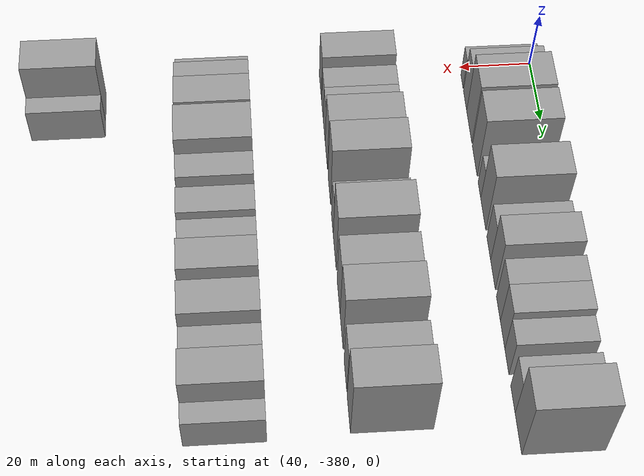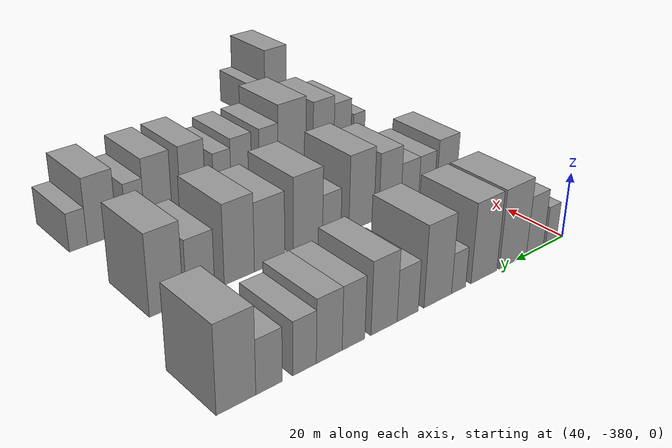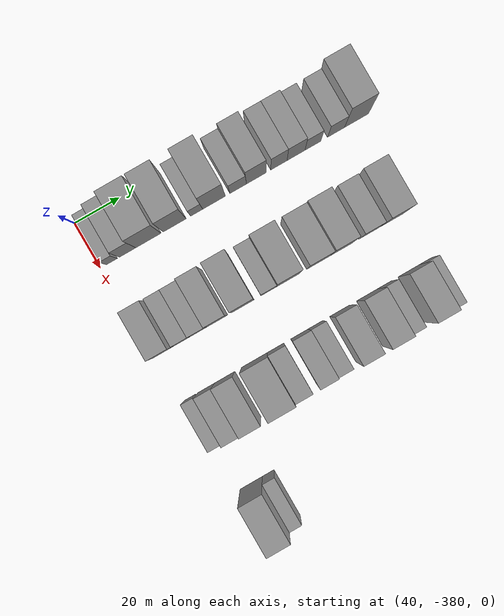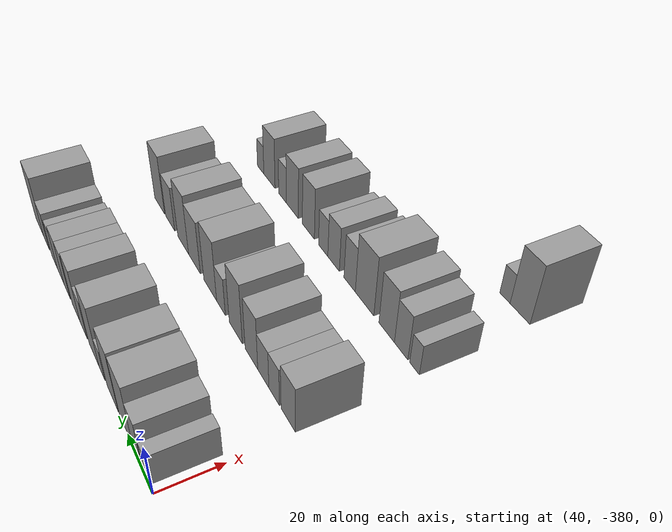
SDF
<sdf version="1.6">
 <world name="default">
  <model name="building_26">
   <static>1</static>
   <pose>50.0000 -374.8311 0 0.000000 0.000000 0.000000</pose>
   <link name="link">
    <pose>0 0 6.00 0 0 0</pose>
    <collision name="collision"><geometry><box><size>20.0000 4.8004 12.0000</size></box></geometry></collision>
    <visual name="visual">
     <cast_shadows>0</cast_shadows>
     <geometry><box><size>20.0000 4.8004 12.0000</size></box></geometry>
     <material>
      <script>
       <uri>model://grey_wall/materials/scripts</uri>
       <uri>model://grey_wall/materials/textures</uri>
       <name>vrc/grey_wall</name>
      </script>
     </material>
    </visual>
   </link>
  </model>
  <model name="building_27">
   <static>1</static>
   <pose>50.0000 -367.8223 0 0.000000 0.000000 0.000000</pose>
   <link name="link">
    <pose>0 0 9.00 0 0 0</pose>
    <collision name="collision"><geometry><box><size>20.0000 7.2173 18.0000</size></box></geometry></collision>
    <visual name="visual">
     <cast_shadows>0</cast_shadows>
     <geometry><box><size>20.0000 7.2173 18.0000</size></box></geometry>
     <material>
      <script>
       <uri>model://grey_wall/materials/scripts</uri>
       <uri>model://grey_wall/materials/textures</uri>
       <name>vrc/grey_wall</name>
      </script>
     </material>
    </visual>
   </link>
  </model>
  <model name="building_28">
   <static>1</static>
   <pose>50.0000 -358.6477 0 0.000000 0.000000 0.000000</pose>
   <link name="link">
    <pose>0 0 12.00 0 0 0</pose>
    <collision name="collision"><geometry><box><size>20.0000 11.1320 24.0000</size></box></geometry></collision>
    <visual name="visual">
     <cast_shadows>0</cast_shadows>
     <geometry><box><size>20.0000 11.1320 24.0000</size></box></geometry>
     <material>
      <script>
       <uri>model://grey_wall/materials/scripts</uri>
       <uri>model://grey_wall/materials/textures</uri>
       <name>vrc/grey_wall</name>
      </script>
     </material>
    </visual>
   </link>
  </model>
  <model name="building_29">
   <static>1</static>
   <pose>50.0000 -347.0237 0 0.000000 0.000000 0.000000</pose>
   <link name="link">
    <pose>0 0 12.00 0 0 0</pose>
    <collision name="collision"><geometry><box><size>20.0000 10.1159 24.0000</size></box></geometry></collision>
    <visual name="visual">
     <cast_shadows>0</cast_shadows>
     <geometry><box><size>20.0000 10.1159 24.0000</size></box></geometry>
     <material>
      <script>
       <uri>model://grey_wall/materials/scripts</uri>
       <uri>model://grey_wall/materials/textures</uri>
       <name>vrc/grey_wall</name>
      </script>
     </material>
    </visual>
   </link>
  </model>
  <model name="building_30">
   <static>1</static>
   <pose>50.0000 -337.2994 0 0.000000 0.000000 0.000000</pose>
   <link name="link">
    <pose>0 0 6.00 0 0 0</pose>
    <collision name="collision"><geometry><box><size>20.0000 5.3329 12.0000</size></box></geometry></collision>
    <visual name="visual">
     <cast_shadows>0</cast_shadows>
     <geometry><box><size>20.0000 5.3329 12.0000</size></box></geometry>
     <material>
      <script>
       <uri>model://grey_wall/materials/scripts</uri>
       <uri>model://grey_wall/materials/textures</uri>
       <name>vrc/grey_wall</name>
      </script>
     </material>
    </visual>
   </link>
  </model>
  <model name="building_31">
   <static>1</static>
   <pose>50.0000 -329.6168 0 0.000000 0.000000 0.000000</pose>
   <link name="link">
    <pose>0 0 12.00 0 0 0</pose>
    <collision name="collision"><geometry><box><size>20.0000 10.0321 24.0000</size></box></geometry></collision>
    <visual name="visual">
     <cast_shadows>0</cast_shadows>
     <geometry><box><size>20.0000 10.0321 24.0000</size></box></geometry>
     <material>
      <script>
       <uri>model://grey_wall/materials/scripts</uri>
       <uri>model://grey_wall/materials/textures</uri>
       <name>vrc/grey_wall</name>
      </script>
     </material>
    </visual>
   </link>
  </model>
  <model name="building_32">
   <static>1</static>
   <pose>50.0000 -318.9343 0 0.000000 0.000000 0.000000</pose>
   <link name="link">
    <pose>0 0 7.50 0 0 0</pose>
    <collision name="collision"><geometry><box><size>20.0000 7.3329 15.0000</size></box></geometry></collision>
    <visual name="visual">
     <cast_shadows>0</cast_shadows>
     <geometry><box><size>20.0000 7.3329 15.0000</size></box></geometry>
     <material>
      <script>
       <uri>model://grey_wall/materials/scripts</uri>
       <uri>model://grey_wall/materials/textures</uri>
       <name>vrc/grey_wall</name>
      </script>
     </material>
    </visual>
   </link>
  </model>
  <model name="building_33">
   <static>1</static>
   <pose>50.0000 -310.8922 0 0.000000 0.000000 0.000000</pose>
   <link name="link">
    <pose>0 0 10.50 0 0 0</pose>
    <collision name="collision"><geometry><box><size>20.0000 8.7513 21.0000</size></box></geometry></collision>
    <visual name="visual">
     <cast_shadows>0</cast_shadows>
     <geometry><box><size>20.0000 8.7513 21.0000</size></box></geometry>
     <material>
      <script>
       <uri>model://grey_wall/materials/scripts</uri>
       <uri>model://grey_wall/materials/textures</uri>
       <name>vrc/grey_wall</name>
      </script>
     </material>
    </visual>
   </link>
  </model>
  <model name="building_34">
   <static>1</static>
   <pose>50.0000 -300.9000 0 0.000000 0.000000 0.000000</pose>
   <link name="link">
    <pose>0 0 9.00 0 0 0</pose>
    <collision name="collision"><geometry><box><size>20.0000 7.2331 18.0000</size></box></geometry></collision>
    <visual name="visual">
     <cast_shadows>0</cast_shadows>
     <geometry><box><size>20.0000 7.2331 18.0000</size></box></geometry>
     <material>
      <script>
       <uri>model://grey_wall/materials/scripts</uri>
       <uri>model://grey_wall/materials/textures</uri>
       <name>vrc/grey_wall</name>
      </script>
     </material>
    </visual>
   </link>
  </model>
  <model name="building_35">
   <static>1</static>
   <pose>50.0000 -293.3137 0 0.000000 0.000000 0.000000</pose>
   <link name="link">
    <pose>0 0 9.00 0 0 0</pose>
    <collision name="collision"><geometry><box><size>20.0000 7.9395 18.0000</size></box></geometry></collision>
    <visual name="visual">
     <cast_shadows>0</cast_shadows>
     <geometry><box><size>20.0000 7.9395 18.0000</size></box></geometry>
     <material>
      <script>
       <uri>model://grey_wall/materials/scripts</uri>
       <uri>model://grey_wall/materials/textures</uri>
       <name>vrc/grey_wall</name>
      </script>
     </material>
    </visual>
   </link>
  </model>
  <model name="building_36">
   <static>1</static>
   <pose>50.0000 -285.8344 0 0.000000 0.000000 0.000000</pose>
   <link name="link">
    <pose>0 0 7.50 0 0 0</pose>
    <collision name="collision"><geometry><box><size>20.0000 7.0191 15.0000</size></box></geometry></collision>
    <visual name="visual">
     <cast_shadows>0</cast_shadows>
     <geometry><box><size>20.0000 7.0191 15.0000</size></box></geometry>
     <material>
      <script>
       <uri>model://grey_wall/materials/scripts</uri>
       <uri>model://grey_wall/materials/textures</uri>
       <name>vrc/grey_wall</name>
      </script>
     </material>
    </visual>
   </link>
  </model>
  <model name="building_37">
   <static>1</static>
   <pose>50.0000 -275.5826 0 0.000000 0.000000 0.000000</pose>
   <link name="link">
    <pose>0 0 7.50 0 0 0</pose>
    <collision name="collision"><geometry><box><size>20.0000 7.4845 15.0000</size></box></geometry></collision>
    <visual name="visual">
     <cast_shadows>0</cast_shadows>
     <geometry><box><size>20.0000 7.4845 15.0000</size></box></geometry>
     <material>
      <script>
       <uri>model://grey_wall/materials/scripts</uri>
       <uri>model://grey_wall/materials/textures</uri>
       <name>vrc/grey_wall</name>
      </script>
     </material>
    </visual>
   </link>
  </model>
  <model name="building_38">
   <static>1</static>
   <pose>50.0000 -266.4854 0 0.000000 0.000000 0.000000</pose>
   <link name="link">
    <pose>0 0 12.00 0 0 0</pose>
    <collision name="collision"><geometry><box><size>20.0000 10.7098 24.0000</size></box></geometry></collision>
    <visual name="visual">
     <cast_shadows>0</cast_shadows>
     <geometry><box><size>20.0000 10.7098 24.0000</size></box></geometry>
     <material>
      <script>
       <uri>model://grey_wall/materials/scripts</uri>
       <uri>model://grey_wall/materials/textures</uri>
       <name>vrc/grey_wall</name>
      </script>
     </material>
    </visual>
   </link>
  </model>
  <model name="building_156">
   <static>1</static>
   <pose>90.0000 -374.9344 0 0.000000 0.000000 0.000000</pose>
   <link name="link">
    <pose>0 0 9.00 0 0 0</pose>
    <collision name="collision"><geometry><box><size>20.0000 8.7517 18.0000</size></box></geometry></collision>
    <visual name="visual">
     <cast_shadows>0</cast_shadows>
     <geometry><box><size>20.0000 8.7517 18.0000</size></box></geometry>
     <material>
      <script>
       <uri>model://grey_wall/materials/scripts</uri>
       <uri>model://grey_wall/materials/textures</uri>
       <name>vrc/grey_wall</name>
      </script>
     </material>
    </visual>
   </link>
  </model>
  <model name="building_157">
   <static>1</static>
   <pose>90.0000 -366.1807 0 0.000000 0.000000 0.000000</pose>
   <link name="link">
    <pose>0 0 7.50 0 0 0</pose>
    <collision name="collision"><geometry><box><size>20.0000 6.7557 15.0000</size></box></geometry></collision>
    <visual name="visual">
     <cast_shadows>0</cast_shadows>
     <geometry><box><size>20.0000 6.7557 15.0000</size></box></geometry>
     <material>
      <script>
       <uri>model://grey_wall/materials/scripts</uri>
       <uri>model://grey_wall/materials/textures</uri>
       <name>vrc/grey_wall</name>
      </script>
     </material>
    </visual>
   </link>
  </model>
  <model name="building_158">
   <static>1</static>
   <pose>90.0000 -359.0996 0 0.000000 0.000000 0.000000</pose>
   <link name="link">
    <pose>0 0 7.50 0 0 0</pose>
    <collision name="collision"><geometry><box><size>20.0000 7.4064 15.0000</size></box></geometry></collision>
    <visual name="visual">
     <cast_shadows>0</cast_shadows>
     <geometry><box><size>20.0000 7.4064 15.0000</size></box></geometry>
     <material>
      <script>
       <uri>model://grey_wall/materials/scripts</uri>
       <uri>model://grey_wall/materials/textures</uri>
       <name>vrc/grey_wall</name>
      </script>
     </material>
    </visual>
   </link>
  </model>
  <model name="building_159">
   <static>1</static>
   <pose>90.0000 -350.9977 0 0.000000 0.000000 0.000000</pose>
   <link name="link">
    <pose>0 0 10.50 0 0 0</pose>
    <collision name="collision"><geometry><box><size>20.0000 8.7975 21.0000</size></box></geometry></collision>
    <visual name="visual">
     <cast_shadows>0</cast_shadows>
     <geometry><box><size>20.0000 8.7975 21.0000</size></box></geometry>
     <material>
      <script>
       <uri>model://grey_wall/materials/scripts</uri>
       <uri>model://grey_wall/materials/textures</uri>
       <name>vrc/grey_wall</name>
      </script>
     </material>
    </visual>
   </link>
  </model>
  <model name="building_160">
   <static>1</static>
   <pose>90.0000 -339.7776 0 0.000000 0.000000 0.000000</pose>
   <link name="link">
    <pose>0 0 12.00 0 0 0</pose>
    <collision name="collision"><geometry><box><size>20.0000 9.6427 24.0000</size></box></geometry></collision>
    <visual name="visual">
     <cast_shadows>0</cast_shadows>
     <geometry><box><size>20.0000 9.6427 24.0000</size></box></geometry>
     <material>
      <script>
       <uri>model://grey_wall/materials/scripts</uri>
       <uri>model://grey_wall/materials/textures</uri>
       <name>vrc/grey_wall</name>
      </script>
     </material>
    </visual>
   </link>
  </model>
  <model name="building_161">
   <static>1</static>
   <pose>90.0000 -328.5496 0 0.000000 0.000000 0.000000</pose>
   <link name="link">
    <pose>0 0 7.50 0 0 0</pose>
    <collision name="collision"><geometry><box><size>20.0000 6.8134 15.0000</size></box></geometry></collision>
    <visual name="visual">
     <cast_shadows>0</cast_shadows>
     <geometry><box><size>20.0000 6.8134 15.0000</size></box></geometry>
     <material>
      <script>
       <uri>model://grey_wall/materials/scripts</uri>
       <uri>model://grey_wall/materials/textures</uri>
       <name>vrc/grey_wall</name>
      </script>
     </material>
    </visual>
   </link>
  </model>
  <model name="building_162">
   <static>1</static>
   <pose>90.0000 -319.9287 0 0.000000 0.000000 0.000000</pose>
   <link name="link">
    <pose>0 0 12.00 0 0 0</pose>
    <collision name="collision"><geometry><box><size>20.0000 10.4284 24.0000</size></box></geometry></collision>
    <visual name="visual">
     <cast_shadows>0</cast_shadows>
     <geometry><box><size>20.0000 10.4284 24.0000</size></box></geometry>
     <material>
      <script>
       <uri>model://grey_wall/materials/scripts</uri>
       <uri>model://grey_wall/materials/textures</uri>
       <name>vrc/grey_wall</name>
      </script>
     </material>
    </visual>
   </link>
  </model>
  <model name="building_163">
   <static>1</static>
   <pose>90.0000 -306.5840 0 0.000000 0.000000 0.000000</pose>
   <link name="link">
    <pose>0 0 10.50 0 0 0</pose>
    <collision name="collision"><geometry><box><size>20.0000 10.2610 21.0000</size></box></geometry></collision>
    <visual name="visual">
     <cast_shadows>0</cast_shadows>
     <geometry><box><size>20.0000 10.2610 21.0000</size></box></geometry>
     <material>
      <script>
       <uri>model://grey_wall/materials/scripts</uri>
       <uri>model://grey_wall/materials/textures</uri>
       <name>vrc/grey_wall</name>
      </script>
     </material>
    </visual>
   </link>
  </model>
  <model name="building_164">
   <static>1</static>
   <pose>90.0000 -296.5458 0 0.000000 0.000000 0.000000</pose>
   <link name="link">
    <pose>0 0 12.00 0 0 0</pose>
    <collision name="collision"><geometry><box><size>20.0000 9.8153 24.0000</size></box></geometry></collision>
    <visual name="visual">
     <cast_shadows>0</cast_shadows>
     <geometry><box><size>20.0000 9.8153 24.0000</size></box></geometry>
     <material>
      <script>
       <uri>model://grey_wall/materials/scripts</uri>
       <uri>model://grey_wall/materials/textures</uri>
       <name>vrc/grey_wall</name>
      </script>
     </material>
    </visual>
   </link>
  </model>
  <model name="building_165">
   <static>1</static>
   <pose>90.0000 -284.2924 0 0.000000 0.000000 0.000000</pose>
   <link name="link">
    <pose>0 0 9.00 0 0 0</pose>
    <collision name="collision"><geometry><box><size>20.0000 8.6915 18.0000</size></box></geometry></collision>
    <visual name="visual">
     <cast_shadows>0</cast_shadows>
     <geometry><box><size>20.0000 8.6915 18.0000</size></box></geometry>
     <material>
      <script>
       <uri>model://grey_wall/materials/scripts</uri>
       <uri>model://grey_wall/materials/textures</uri>
       <name>vrc/grey_wall</name>
      </script>
     </material>
    </visual>
   </link>
  </model>
  <model name="building_166">
   <static>1</static>
   <pose>90.0000 -273.9540 0 0.000000 0.000000 0.000000</pose>
   <link name="link">
    <pose>0 0 12.00 0 0 0</pose>
    <collision name="collision"><geometry><box><size>20.0000 9.9853 24.0000</size></box></geometry></collision>
    <visual name="visual">
     <cast_shadows>0</cast_shadows>
     <geometry><box><size>20.0000 9.9853 24.0000</size></box></geometry>
     <material>
      <script>
       <uri>model://grey_wall/materials/scripts</uri>
       <uri>model://grey_wall/materials/textures</uri>
       <name>vrc/grey_wall</name>
      </script>
     </material>
    </visual>
   </link>
  </model>
  <model name="building_297">
   <static>1</static>
   <pose>130.0000 -374.8850 0 0.000000 0.000000 0.000000</pose>
   <link name="link">
    <pose>0 0 6.00 0 0 0</pose>
    <collision name="collision"><geometry><box><size>20.0000 5.1148 12.0000</size></box></geometry></collision>
    <visual name="visual">
     <cast_shadows>0</cast_shadows>
     <geometry><box><size>20.0000 5.1148 12.0000</size></box></geometry>
     <material>
      <script>
       <uri>model://grey_wall/materials/scripts</uri>
       <uri>model://grey_wall/materials/textures</uri>
       <name>vrc/grey_wall</name>
      </script>
     </material>
    </visual>
   </link>
  </model>
  <model name="building_298">
   <static>1</static>
   <pose>130.0000 -367.6358 0 0.000000 0.000000 0.000000</pose>
   <link name="link">
    <pose>0 0 9.00 0 0 0</pose>
    <collision name="collision"><geometry><box><size>20.0000 7.3835 18.0000</size></box></geometry></collision>
    <visual name="visual">
     <cast_shadows>0</cast_shadows>
     <geometry><box><size>20.0000 7.3835 18.0000</size></box></geometry>
     <material>
      <script>
       <uri>model://grey_wall/materials/scripts</uri>
       <uri>model://grey_wall/materials/textures</uri>
       <name>vrc/grey_wall</name>
      </script>
     </material>
    </visual>
   </link>
  </model>
  <model name="building_299">
   <static>1</static>
   <pose>130.0000 -359.5038 0 0.000000 0.000000 0.000000</pose>
   <link name="link">
    <pose>0 0 10.50 0 0 0</pose>
    <collision name="collision"><geometry><box><size>20.0000 8.8806 21.0000</size></box></geometry></collision>
    <visual name="visual">
     <cast_shadows>0</cast_shadows>
     <geometry><box><size>20.0000 8.8806 21.0000</size></box></geometry>
     <material>
      <script>
       <uri>model://grey_wall/materials/scripts</uri>
       <uri>model://grey_wall/materials/textures</uri>
       <name>vrc/grey_wall</name>
      </script>
     </material>
    </visual>
   </link>
  </model>
  <model name="building_300">
   <static>1</static>
   <pose>130.0000 -346.3968 0 0.000000 0.000000 0.000000</pose>
   <link name="link">
    <pose>0 0 12.00 0 0 0</pose>
    <collision name="collision"><geometry><box><size>20.0000 11.3335 24.0000</size></box></geometry></collision>
    <visual name="visual">
     <cast_shadows>0</cast_shadows>
     <geometry><box><size>20.0000 11.3335 24.0000</size></box></geometry>
     <material>
      <script>
       <uri>model://grey_wall/materials/scripts</uri>
       <uri>model://grey_wall/materials/textures</uri>
       <name>vrc/grey_wall</name>
      </script>
     </material>
    </visual>
   </link>
  </model>
  <model name="building_301">
   <static>1</static>
   <pose>130.0000 -337.0668 0 0.000000 0.000000 0.000000</pose>
   <link name="link">
    <pose>0 0 9.00 0 0 0</pose>
    <collision name="collision"><geometry><box><size>20.0000 7.3266 18.0000</size></box></geometry></collision>
    <visual name="visual">
     <cast_shadows>0</cast_shadows>
     <geometry><box><size>20.0000 7.3266 18.0000</size></box></geometry>
     <material>
      <script>
       <uri>model://grey_wall/materials/scripts</uri>
       <uri>model://grey_wall/materials/textures</uri>
       <name>vrc/grey_wall</name>
      </script>
     </material>
    </visual>
   </link>
  </model>
  <model name="building_302">
   <static>1</static>
   <pose>130.0000 -326.5060 0 0.000000 0.000000 0.000000</pose>
   <link name="link">
    <pose>0 0 9.00 0 0 0</pose>
    <collision name="collision"><geometry><box><size>20.0000 7.7950 18.0000</size></box></geometry></collision>
    <visual name="visual">
     <cast_shadows>0</cast_shadows>
     <geometry><box><size>20.0000 7.7950 18.0000</size></box></geometry>
     <material>
      <script>
       <uri>model://grey_wall/materials/scripts</uri>
       <uri>model://grey_wall/materials/textures</uri>
       <name>vrc/grey_wall</name>
      </script>
     </material>
    </visual>
   </link>
  </model>
  <model name="building_303">
   <static>1</static>
   <pose>130.0000 -319.3804 0 0.000000 0.000000 0.000000</pose>
   <link name="link">
    <pose>0 0 7.50 0 0 0</pose>
    <collision name="collision"><geometry><box><size>20.0000 6.4562 15.0000</size></box></geometry></collision>
    <visual name="visual">
     <cast_shadows>0</cast_shadows>
     <geometry><box><size>20.0000 6.4562 15.0000</size></box></geometry>
     <material>
      <script>
       <uri>model://grey_wall/materials/scripts</uri>
       <uri>model://grey_wall/materials/textures</uri>
       <name>vrc/grey_wall</name>
      </script>
     </material>
    </visual>
   </link>
  </model>
  <model name="building_304">
   <static>1</static>
   <pose>130.0000 -308.7238 0 0.000000 0.000000 0.000000</pose>
   <link name="link">
    <pose>0 0 10.50 0 0 0</pose>
    <collision name="collision"><geometry><box><size>20.0000 8.8570 21.0000</size></box></geometry></collision>
    <visual name="visual">
     <cast_shadows>0</cast_shadows>
     <geometry><box><size>20.0000 8.8570 21.0000</size></box></geometry>
     <material>
      <script>
       <uri>model://grey_wall/materials/scripts</uri>
       <uri>model://grey_wall/materials/textures</uri>
       <name>vrc/grey_wall</name>
      </script>
     </material>
    </visual>
   </link>
  </model>
  <model name="building_305">
   <static>1</static>
   <pose>130.0000 -296.6509 0 0.000000 0.000000 0.000000</pose>
   <link name="link">
    <pose>0 0 10.50 0 0 0</pose>
    <collision name="collision"><geometry><box><size>20.0000 9.2887 21.0000</size></box></geometry></collision>
    <visual name="visual">
     <cast_shadows>0</cast_shadows>
     <geometry><box><size>20.0000 9.2887 21.0000</size></box></geometry>
     <material>
      <script>
       <uri>model://grey_wall/materials/scripts</uri>
       <uri>model://grey_wall/materials/textures</uri>
       <name>vrc/grey_wall</name>
      </script>
     </material>
    </visual>
   </link>
  </model>
  <model name="building_306">
   <static>1</static>
   <pose>130.0000 -288.9346 0 0.000000 0.000000 0.000000</pose>
   <link name="link">
    <pose>0 0 7.50 0 0 0</pose>
    <collision name="collision"><geometry><box><size>20.0000 6.1439 15.0000</size></box></geometry></collision>
    <visual name="visual">
     <cast_shadows>0</cast_shadows>
     <geometry><box><size>20.0000 6.1439 15.0000</size></box></geometry>
     <material>
      <script>
       <uri>model://grey_wall/materials/scripts</uri>
       <uri>model://grey_wall/materials/textures</uri>
       <name>vrc/grey_wall</name>
      </script>
     </material>
    </visual>
   </link>
  </model>
  <model name="building_307">
   <static>1</static>
   <pose>130.0000 -278.1703 0 0.000000 0.000000 0.000000</pose>
   <link name="link">
    <pose>0 0 10.50 0 0 0</pose>
    <collision name="collision"><geometry><box><size>20.0000 9.3846 21.0000</size></box></geometry></collision>
    <visual name="visual">
     <cast_shadows>0</cast_shadows>
     <geometry><box><size>20.0000 9.3846 21.0000</size></box></geometry>
     <material>
      <script>
       <uri>model://grey_wall/materials/scripts</uri>
       <uri>model://grey_wall/materials/textures</uri>
       <name>vrc/grey_wall</name>
      </script>
     </material>
    </visual>
   </link>
  </model>
  <model name="building_308">
   <static>1</static>
   <pose>130.0000 -270.7089 0 0.000000 0.000000 0.000000</pose>
   <link name="link">
    <pose>0 0 6.00 0 0 0</pose>
    <collision name="collision"><geometry><box><size>20.0000 5.5382 12.0000</size></box></geometry></collision>
    <visual name="visual">
     <cast_shadows>0</cast_shadows>
     <geometry><box><size>20.0000 5.5382 12.0000</size></box></geometry>
     <material>
      <script>
       <uri>model://grey_wall/materials/scripts</uri>
       <uri>model://grey_wall/materials/textures</uri>
       <name>vrc/grey_wall</name>
      </script>
     </material>
    </visual>
   </link>
  </model>
  <model name="building_435">
   <static>1</static>
   <pose>170.0000 -370.9908 0 0.000000 0.000000 0.000000</pose>
   <link name="link">
    <pose>0 0 12.00 0 0 0</pose>
    <collision name="collision"><geometry><box><size>20.0000 9.7075 24.0000</size></box></geometry></collision>
    <visual name="visual">
     <cast_shadows>0</cast_shadows>
     <geometry><box><size>20.0000 9.7075 24.0000</size></box></geometry>
     <material>
      <script>
       <uri>model://grey_wall/materials/scripts</uri>
       <uri>model://grey_wall/materials/textures</uri>
       <name>vrc/grey_wall</name>
      </script>
     </material>
    </visual>
   </link>
  </model>
  <model name="building_436">
   <static>1</static>
   <pose>170.0000 -363.5128 0 0.000000 0.000000 0.000000</pose>
   <link name="link">
    <pose>0 0 6.00 0 0 0</pose>
    <collision name="collision"><geometry><box><size>20.0000 5.2486 12.0000</size></box></geometry></collision>
    <visual name="visual">
     <cast_shadows>0</cast_shadows>
     <geometry><box><size>20.0000 5.2486 12.0000</size></box></geometry>
     <material>
      <script>
       <uri>model://grey_wall/materials/scripts</uri>
       <uri>model://grey_wall/materials/textures</uri>
       <name>vrc/grey_wall</name>
      </script>
     </material>
    </visual>
   </link>
  </model>
 </world>
</sdf>
